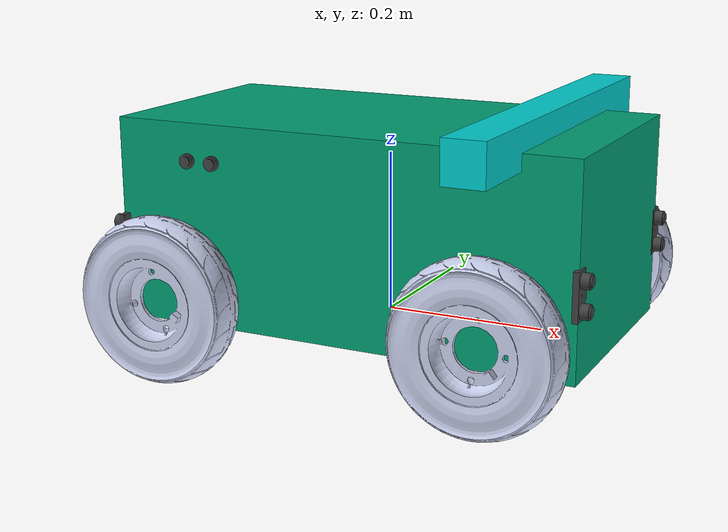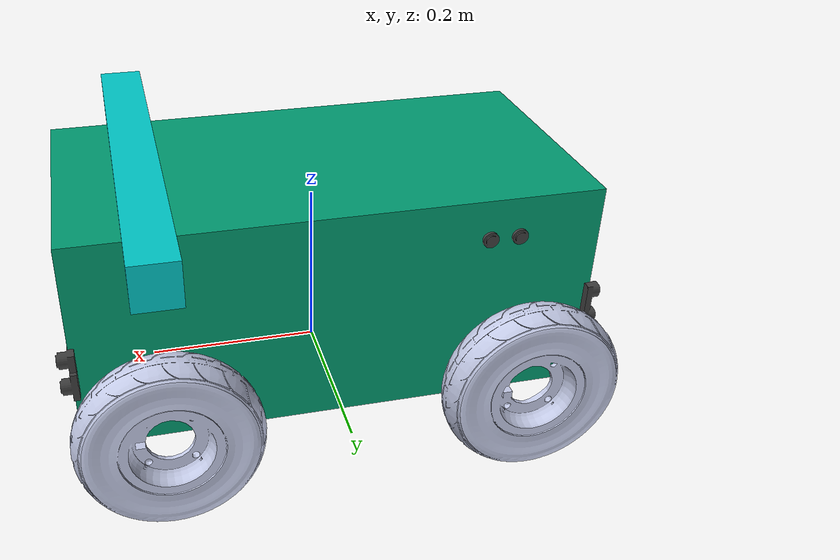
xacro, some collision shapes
<?xml version="1.0"?>

<robot name="ebot" xmlns:xacro="http://www.ros.org/wiki/xacro">
<xacro:include filename="$(find ebot_description)/models/ebot/ebot.gazebo" />

<!-- macros for calculating inertia -->

<xacro:property name="base_mass" value="46.034" />
<xacro:property name="wheel_mass" value="2.637" />

<xacro:macro name="box_inertia" params="b_mass b_x b_y b_z">
        <mass value="${b_mass}"/>
        <inertia  ixx="${b_mass*(b_y*b_y+b_z*b_z)/12}" ixy = "0" ixz = "0"
                  iyy="${b_mass*(b_x*b_x+b_z*b_z)/12}" iyz = "0"
                  izz="${b_mass*(b_x*b_x+b_y*b_y)/12}"/>
</xacro:macro>

<!-- Changed since y and z are switched in the axis frame -->
<xacro:macro name="cylinder_inertia" params="c_mass r l">
        <mass value="${c_mass}"/>
        <inertia  ixx="${c_mass*(3*r*r+l*l)/12}" ixy = "0" ixz = "0"
                  iyy="${c_mass*(r*r)/2}" iyz = "0"
                  izz="${c_mass*(3*r*r+l*l)/12}" />
</xacro:macro>

<!--   base of the robot -->
  <link name="ebot_base_link">
  </link>

    <!-- BASE LINK -->
    <joint name="base_footprint_joint" type="fixed">
        <parent link="ebot_base_link"/>
        <child link="base_footprint"/>
        <origin xyz="0.0 0.0 0.0" rpy="0.0 0.0 0.0"/>
    </joint>
    <link name="base_footprint">
    </link>

    <joint name="base_link_ebot_base_joint" type="fixed">
        <parent link="ebot_base_link"/>
        <child link="ebot_base"/>
        <origin xyz="0.0 0.0 0.0" rpy="0.0 0.0 0.0"/>
    </joint>

  <link
    name="ebot_base">
    <inertial>
      <origin xyz="0 0.0 0.12" rpy="0 0 0" />
      <xacro:box_inertia b_mass="${base_mass}" b_x="0.585" b_y="0.30" b_z="0.25"/>
    </inertial>
    <visual>
      <origin
        xyz="0 0 0"
        rpy="0 0 0" />
      <geometry>
        <mesh
          filename="file://$(find ebot_description)/meshes/chassis.dae" />
      </geometry>
    </visual>
    <collision>
      <origin
          xyz="0 0.0 0.12"
          rpy="0 0 0" />
        <geometry>
          <box size="0.585 0.30 0.25"/>
        </geometry>
    </collision>
  </link>

<!-- wheels -->
<xacro:property name="wheel_inertia">
    <xacro:cylinder_inertia c_mass="${wheel_mass}" r = "0.1" l="0.05"/>   <!--  mass radius length of a wheel -->
</xacro:property>

<!-- front wheel right -->

  <link
    name="FWR">
    <inertial>
      <origin
        xyz="6.6592E-05 0.025016 -1.3483E-06"
        rpy="0 0 0" />
      <xacro:insert_block name="wheel_inertia" />

    </inertial>

    <visual>
      <origin
        xyz="0 0 0"
        rpy="0 0 0" />
      <geometry>
        <mesh
          filename="file://$(find ebot_description)/meshes/FWR.STL" />
      </geometry>
      <material
        name="">
        <color
          rgba="0.79216 0.81961 0.93333 1" />
      </material>
    </visual>

    <collision>
      <origin
         xyz="0 0.025 0"
        rpy="1.57 1.57 0" />
      <geometry>
         <cylinder length="0.05" radius="0.1"/>
      </geometry>
    </collision>
  </link>
  <joint
    name="FWRJ"
    type="continuous">
    <origin
      xyz="0.202539503068943 -0.189027702306049 0.0449999999999943"
      rpy="-3.14159265358979 0.911096362238563 0.00679706827343889" />
    <parent
      link="ebot_base" />
    <child
      link="FWR" />
    <axis
      xyz="0 -1 0" />
  </joint>

<!-- front wheel left -->
  <link
    name="FWL">
    <inertial>
      <origin
        xyz="6.6594E-05 0.025016 -1.349E-06"
        rpy="0 0 0" />
           <xacro:insert_block name="wheel_inertia" />
    </inertial>
    <visual>
      <origin
        xyz="0 0 0"
        rpy="0 0 0" />
      <geometry>
        <mesh
          filename="file://$(find ebot_description)/meshes/FWL.STL" />
      </geometry>
      <material
        name="">
        <color
          rgba="0.79216 0.81961 0.93333 1" />
      </material>
    </visual>
    <collision>
      <origin
         xyz="0 0.025 0"
        rpy="1.57 1.57 0" />
      <geometry>
         <cylinder length="0.05" radius="0.1"/>
      </geometry>
    </collision>
  </link>
  <joint
    name="FWLJ"
    type="continuous">
    <origin
      xyz="0.199948480594093 0.192163491981716 0.0450000000000047"
      rpy="0 0 0.00679706827344463" />
    <parent
      link="ebot_base" />
    <child
      link="FWL" />
    <axis
      xyz="0 1 0" />
  </joint>

<!--   rear wheel right -->
  <link
    name="RWR">
    <inertial>
      <origin
        xyz="6.6592E-05 0.025016 -1.3483E-06"
        rpy="0 0 0" />
           <xacro:insert_block name="wheel_inertia" />
    </inertial>
    <visual>
      <origin
        xyz="0 0 0"
        rpy="0 0 0" />
      <geometry>
        <mesh
          filename="file://$(find ebot_description)/meshes/RWR.STL" />
      </geometry>
      <material
        name="">
        <color
          rgba="0.79216 0.81961 0.93333 1" />
      </material>
    </visual>
   <collision>
      <origin
         xyz="0 0.025 0"
        rpy="1.57 1.57 0" />
      <geometry>
         <cylinder length="0.05" radius="0.1"/>
      </geometry>
    </collision>
  </link>
  <joint
    name="RWRJ"
    type="continuous">
    <origin
      xyz="-0.197451256939211 -0.191746508680447 0.044999999999993"
      rpy="-3.14159265358979 0.544912084409921 0.00679706827344312" />
    <parent
      link="ebot_base" />
    <child
      link="RWR" />
    <axis
      xyz="0 -1 0" />
  </joint>

<!--   rear wheel left -->
  <link
    name="RWL">
    <inertial>
      <origin
        xyz="6.6594E-05 0.025016 -1.349E-06"
        rpy="0 0 0" />
        <xacro:insert_block name="wheel_inertia" />
    </inertial>
    <visual>
      <origin
        xyz="0 0 0"
        rpy="0 0 0" />
      <geometry>
        <mesh
          filename="file://$(find ebot_description)/meshes/RWL.STL" />
      </geometry>
      <material
        name="">
        <color
          rgba="0.79216 0.81961 0.93333 1" />
      </material>
    </visual>
   <collision>
      <origin
         xyz="0 0.025 0"
        rpy="1.57 1.57 0" />
      <geometry>
         <cylinder length="0.05" radius="0.1"/>
      </geometry>
    </collision>
  </link>
  <joint
    name="RWLJ"
    type="continuous">
    <origin
      xyz="-0.200042279414009 0.189444685607321 0.0449999999999969"
      rpy="0 0 0.00679706827344463" />
    <parent
      link="ebot_base" />
    <child
      link="RWL" />
    <axis
      xyz="0 1 0" />
  </joint>

  <!-- Intel real sense Camera for 3D mapping-->

<!-- LIDAR -->
<link name="laser">
    <origin rpy="0 0 0" xyz="0 0 0"/>
    <visual>
      <origin rpy="0 0 0" xyz="0 0 0"/>
      <geometry>
        <cylinder length="0.040" radius="0.030"/>
      </geometry>
    </visual>
  </link>

  <joint name="rplidar_joint" type="fixed">
    <axis xyz="0 1 0"/>
    <origin xyz="0.255540836099039 0 0.18"
      rpy="0 0 0.00679706827344463" />

    <parent link="ebot_base"/>
    <child link="laser"/>
    <limit effort="1000" lower="0" upper="6.28" velocity="100"/>
    <axis rpy="0 0 0" xyz="0.02 0 0.178"/>
    <joint_properties damping="5.0" friction="1.0"/>
  </joint>

<!-- front ultrasonic sensor 1-->
  <link
    name="FUS1">
    <visual>
      <origin
        xyz="0 0 0"
        rpy="0 0 0" />
      <geometry>
        <mesh
          filename="file://$(find ebot_description)/meshes/FUS1.STL" />
      </geometry>
      <material
        name="">
        <color
          rgba="0.250980392156863 0.250980392156863 0.250980392156863 1" />
      </material>
    </visual>
  </link>
  <joint
    name="FUS1J"
    type="fixed">
    <origin
      xyz="0.297825909825268 -0.157279305693451 0.0977263808983278"
      rpy="-1.5707963267949 0 0.00679706827344463" />
    <parent
      link="ebot_base" />
    <child
      link="FUS1" />
    <axis
      xyz="0 0 0" />
  </joint>

<!-- front ultrasonic sensor 2 -->
  <link
    name="FUS2">
    <visual>
      <origin
        xyz="0 0 0"
        rpy="0 0 0" />
      <geometry>
        <mesh
          filename="file://$(find ebot_description)/meshes/FUS2.STL" />
      </geometry>
      <material
        name="">
        <color
          rgba="0.25098 0.25098 0.25098 1" />
      </material>
    </visual>
  </link>
  <joint
    name="FUS2J"
    type="fixed">
    <origin
      xyz="0.295786805044471 0.142713764312663 0.0977263808983286"
      rpy="-1.5707963267949 0 0.00679706827344463" />
    <parent
      link="ebot_base" />
    <child
      link="FUS2" />
    <axis
      xyz="0 0 0" />
  </joint>

<!--   front ultrasonic sensor 3 -->
  <link
    name="FUS3">
    <visual>
      <origin
        xyz="0 0 0"
        rpy="0 0 0" />
      <geometry>
        <mesh
          filename="file://$(find ebot_description)/meshes/FUS3.STL" />
      </geometry>
      <material
        name="">
        <color
          rgba="0.25098 0.25098 0.25098 1" />
      </material>
    </visual>
  </link>
  <joint
    name="FUS3J"
    type="fixed">
    <origin
      xyz="0.27274874909921 -0.0749478536996718 0.0424745013517897"
      rpy="0 0.785398163397449 0.00679706827344116" />
    <parent
      link="ebot_base" />
    <child
      link="FUS3" />
    <axis
      xyz="0 0 0" />
  </joint>

<!--   front ultrasonic sensor 4 -->
  <link
    name="FUS4">
    <visual>
      <origin
        xyz="0 0 0"
        rpy="0 0 0" />
      <geometry>
        <mesh
          filename="file://$(find ebot_description)/meshes/FUS4.STL" />
      </geometry>
      <material
        name="">
        <color
          rgba="0.250980392156863 0.250980392156863 0.250980392156863 1" />
      </material>
    </visual>
  </link>
  <joint
    name="FUS4J"
    type="fixed">
    <origin
      xyz="0.271702008645067 0.0790485889034664 0.0424745013517894"
      rpy="0 0.785398163397449 0.00679706827344116" />
    <parent
      link="ebot_base" />
    <child
      link="FUS4" />
    <axis
      xyz="0 0 0" />
  </joint>

<!-- Updating the name of ultrasonic sensor links for name convenience  -->

<!--   Rear ultra sonic sensor 5 -->

      <!--
        Rear left
       -->
  <link
    name="ultrasonic_rl">
    <visual>
      <origin
        xyz="0 0 0"
        rpy="0 0 0" />
      <geometry>
        <mesh
          filename="file://$(find ebot_description)/meshes/RUS5.STL" />
      </geometry>
      <material
        name="">
        <color
          rgba="0.25098 0.25098 0.25098 1" />
      </material>
    </visual>
  </link>
  <joint
    name="RUS5J"
    type="fixed">
    <origin
      xyz="-0.29532868617037 0.157696288994793 0.0977029437251515"
      rpy="-1.5707963267949 0 -3.13479558531634" />
    <parent
      link="ebot_base" />
    <child
      link="ultrasonic_rl" />
    <axis
      xyz="0 0 0" />
  </joint>

<!--   Rear ultra sonic sensor 6 -->

      <!--
        Rear right
       -->
  <link
    name="ultrasonic_rr">
    <visual>
      <origin
        xyz="0 0 0"
        rpy="0 0 0" />
      <geometry>
        <mesh
          filename="file://$(find ebot_description)/meshes/RUS6.STL" />
      </geometry>
      <material
        name="">
        <color
          rgba="0.250980392156863 0.250980392156863 0.250980392156863 1" />
      </material>
    </visual>
  </link>
  <joint
    name="RUS6J"
    type="fixed">
    <origin
      xyz="-0.293289581389573 -0.14229678101132 0.0977029437251508"
      rpy="-1.5707963267949 0 -3.13479558531634" />
    <parent
      link="ebot_base" />
    <child
      link="ultrasonic_rr" />
    <axis
      xyz="0 0 0" />
  </joint>

<!--   Right ultra sonic sensor 7 -->
  <link
    name="RHUS7">
    <visual>
      <origin
        xyz="0 0 0"
        rpy="0 0 0" />
      <geometry>
        <mesh
          filename="file://$(find ebot_description)/meshes/RHUS7.STL" />
      </geometry>
      <material
        name="">
        <color
          rgba="0.250980392156863 0.250980392156863 0.250980392156863 1" />
      </material>
    </visual>
  </link>
  <joint
    name="RHUS7J"
    type="fixed">
    <origin
      xyz="-0.17860231149778 -0.148017381955971 0.189449821416576"
      rpy="0 0 -1.56399925852145" />
    <parent
      link="ebot_base" />
    <child
      link="RHUS7" />
    <axis
      xyz="0 0 0" />
  </joint>

<!--   Right ultra sonicsensor 9 -->
  <link
    name="RHUS9">
    <visual>
      <origin
        xyz="0 0 0"
        rpy="0 0 0" />
      <geometry>
        <mesh
          filename="file://$(find ebot_description)/meshes/RHUS9.STL" />
      </geometry>
      <material
        name="">
        <color
          rgba="0.25098 0.25098 0.25098 1" />
      </material>
    </visual>
  </link>
  <joint
    name="RHUS9J"
    type="fixed">
    <origin
      xyz="0.141804076845343 -0.0977216096162414 0.196076309026378"
      rpy="-0.00186883076605492 0.123098458475999 -0.786255211903501" />
    <parent
      link="ebot_base" />
    <child
      link="RHUS9" />
    <axis
      xyz="0 0 0" />
  </joint>

<!--   Left ultra sonic sensor 9 -->
  <link
    name="LHUS9">
    <visual>
      <origin
        xyz="0 0 0"
        rpy="0 0 0" />
      <geometry>
        <mesh
          filename="file://$(find ebot_description)/meshes/LHUS9.STL" />
      </geometry>
      <material
        name="">
        <color
          rgba="0.250980392156863 0.250980392156863 0.250980392156863 1" />
      </material>
    </visual>
  </link>
  <joint
    name="LHUS9J"
    type="fixed">
    <origin
      xyz="-0.180600634182961 0.14597582665002 0.189449821416576"
      rpy="0 0 1.57759339506834" />
    <parent
      link="ebot_base" />
    <child
      link="LHUS9" />
    <axis
      xyz="0 0 0" />
  </joint>

<!--   left ultra sonic sensor 10 -->
  <link
    name="LHUS10">
    <visual>
      <origin
        xyz="0 0 0"
        rpy="0 0 0" />
      <geometry>
        <mesh
          filename="file://$(find ebot_description)/meshes/LHUS10.STL" />
      </geometry>
      <material
        name="">
        <color
          rgba="0.25098 0.25098 0.25098 1" />
      </material>
    </visual>
  </link>
  <joint
    name="LHUS10J"
    type="fixed">
    <origin
      xyz="0.14045985551618 0.10004021562239 0.196076309026377"
      rpy="0.00186883076604301 0.123098458475999 0.799849348450393" />
    <parent
      link="ebot_base" />
    <child
      link="LHUS10" />
    <axis
      xyz="0 0 0" />
  </joint>

<!-- IMU -->
  <link name="imu_link">

    <visual>
      <origin xyz="0 0 0" rpy="0 0 0"/>
    <geometry>
        <box size="0.02 0.015 0.008"/>
      </geometry>
    </visual>

  </link>

  <joint
    name="imujoint"
    type="fixed">
    <origin
      xyz="0 0 0.2"
      rpy="0 0 0" />
    <parent
      link="ebot_base" />
    <child
      link="imu_link" />
    <axis
      xyz="0 0 0" />
  </joint>

  <link name="linear_actuator_link">
    <visual>
      <geometry>
        <box size="0.5 0.05 0.05"/>
      </geometry>
      <origin xyz="0 0 0"/>
      <material name="green">
        <color rgba="0 0.8 .8 1"/>
      </material>
    </visual>
    <collision>
      <geometry>
        <box size="0.5 0.05 0.05"/>
      </geometry>
      <origin xyz="0 0 0"/>
    </collision>
    <inertial>
      <mass value="0.2"/>
      <inertia ixx="0.0" ixy="0.0" ixz="0.0" iyy="0.0" iyz="0.0" izz="0.0"/>
    </inertial>
  </link>

  <joint
    name="linear_actuator_joint"
    type="prismatic">
    <parent link="ebot_base_link"/>
    <child link="linear_actuator_link"/>
    <origin xyz="0.2 0 0.25" rpy="0 0 1.57"/>
    <axis xyz="0 1 0"/>
    <limit lower="0.0" upper="0.6" effort="100.0" velocity="1.0"/>
    <dynamics damping="0.1" friction="10"/>
  </joint>

  <ros2_control name="GazeboSystem" type="system">
    <hardware>
      <plugin>gazebo_ros2_control/GazeboSystem</plugin>
    </hardware>
    <joint name="linear_actuator_joint">
      <command_interface name="effort">
        <param name="min">-1000</param>
        <param name="max">1000</param>
      </command_interface>
      <state_interface name="position">
        <param name="initial_value">0.0</param>
      </state_interface>
      <state_interface name="velocity"/>
      <state_interface name="effort"/>
    </joint>
  </ros2_control>

</robot>
